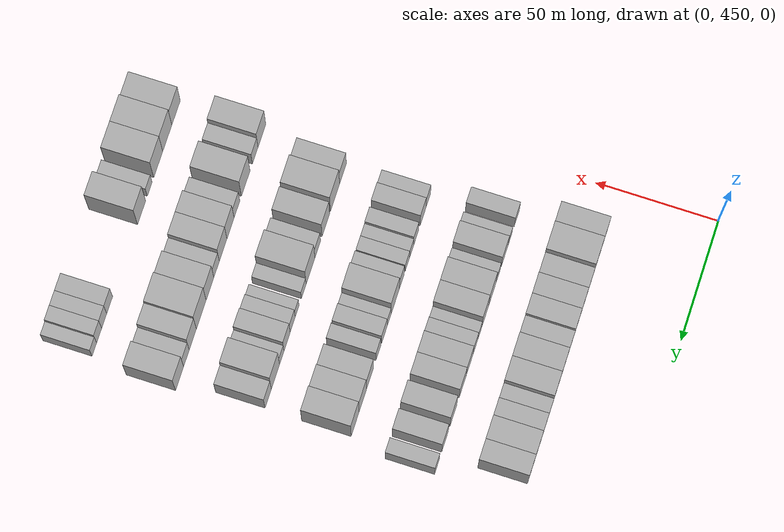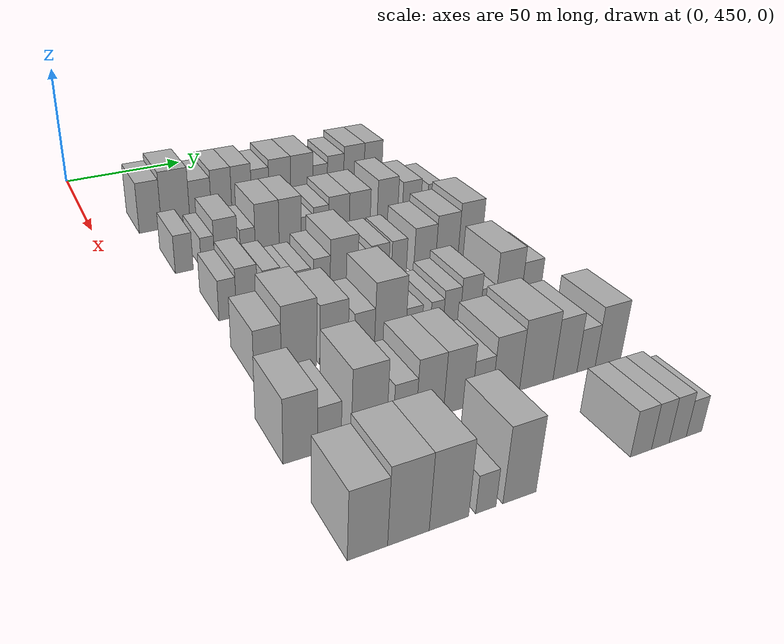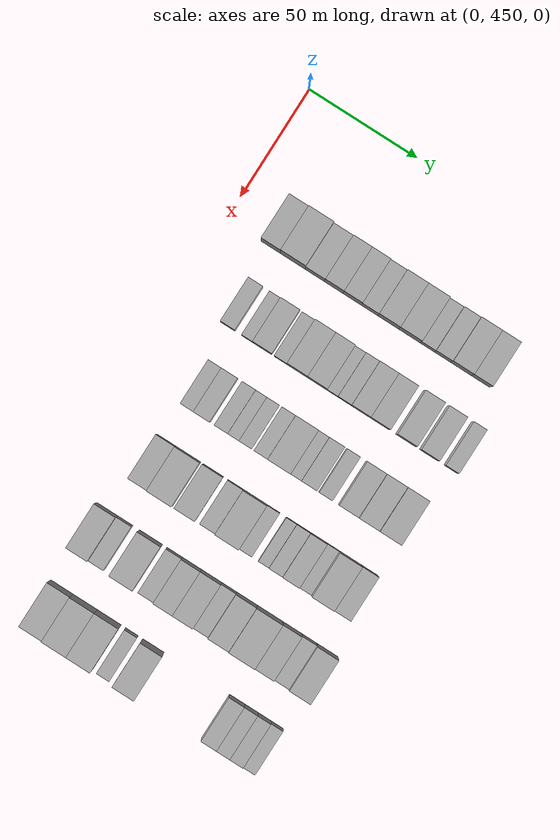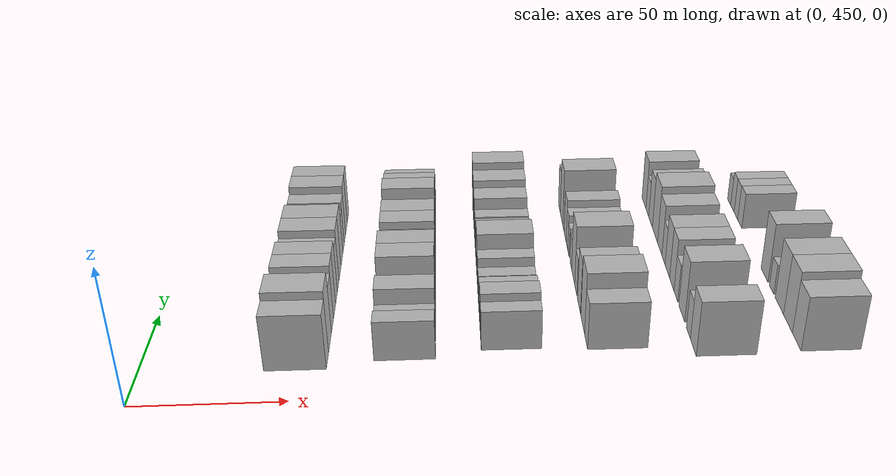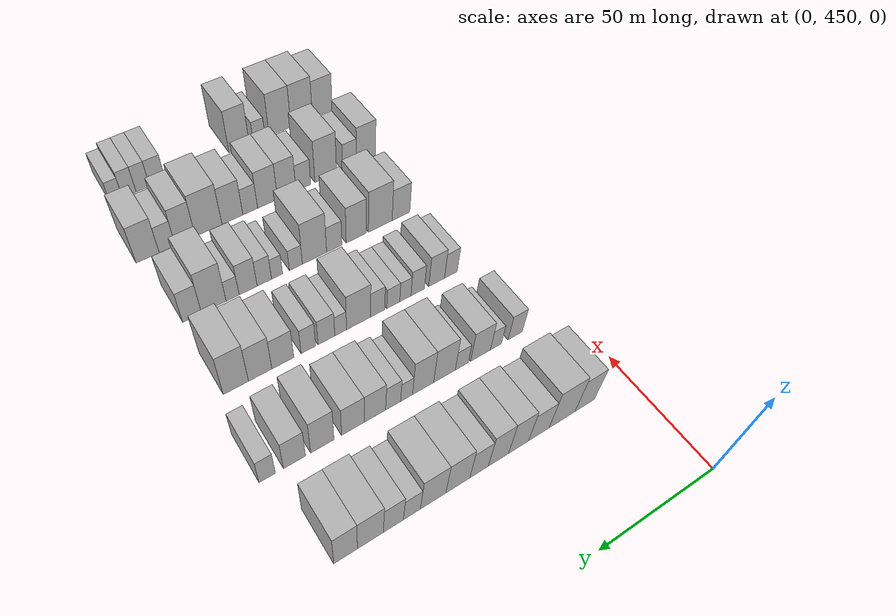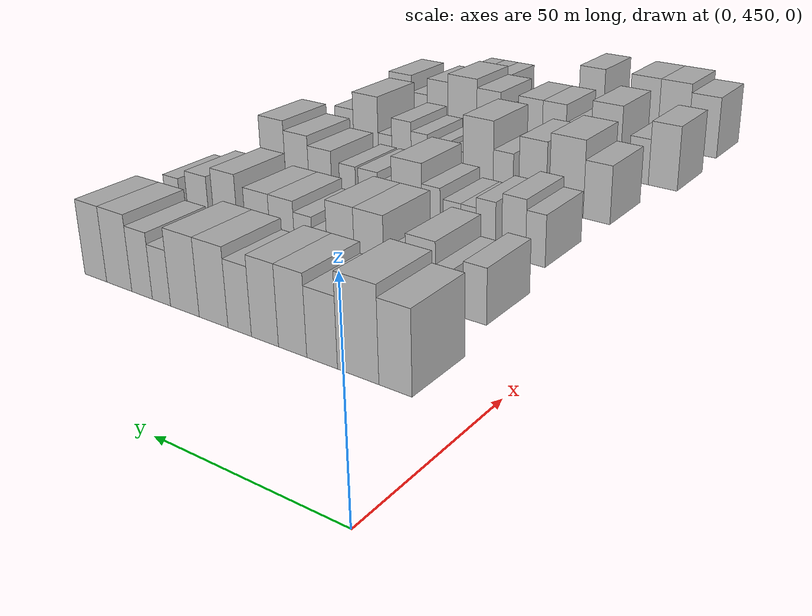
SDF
<sdf version="1.6">
 <world name="default">
  <model name="building_123">
   <static>1</static>
   <pose>50.0000 470.5112 0 0.000000 0.000000 0.000000</pose>
   <link name="link">
    <pose>0 0 10.50 0 0 0</pose>
    <collision name="collision"><geometry><box><size>20.0000 8.8356 21.0000</size></box></geometry></collision>
    <visual name="visual">
     <cast_shadows>0</cast_shadows>
     <geometry><box><size>20.0000 8.8356 21.0000</size></box></geometry>
     <material>
      <script>
       <uri>model://HANNAS_wall/materials/scripts</uri>
       <uri>model://HANNAS_wall/materials/textures</uri>
       <name>vrc/HANNAS_wall</name>
      </script>
     </material>
    </visual>
   </link>
  </model>
  <model name="building_124">
   <static>1</static>
   <pose>50.0000 480.6737 0 0.000000 0.000000 0.000000</pose>
   <link name="link">
    <pose>0 0 12.00 0 0 0</pose>
    <collision name="collision"><geometry><box><size>20.0000 11.4893 24.0000</size></box></geometry></collision>
    <visual name="visual">
     <cast_shadows>0</cast_shadows>
     <geometry><box><size>20.0000 11.4893 24.0000</size></box></geometry>
     <material>
      <script>
       <uri>model://HANNAS_wall/materials/scripts</uri>
       <uri>model://HANNAS_wall/materials/textures</uri>
       <name>vrc/HANNAS_wall</name>
      </script>
     </material>
    </visual>
   </link>
  </model>
  <model name="building_125">
   <static>1</static>
   <pose>50.0000 490.8696 0 0.000000 0.000000 0.000000</pose>
   <link name="link">
    <pose>0 0 9.00 0 0 0</pose>
    <collision name="collision"><geometry><box><size>20.0000 8.9024 18.0000</size></box></geometry></collision>
    <visual name="visual">
     <cast_shadows>0</cast_shadows>
     <geometry><box><size>20.0000 8.9024 18.0000</size></box></geometry>
     <material>
      <script>
       <uri>model://HANNAS_wall/materials/scripts</uri>
       <uri>model://HANNAS_wall/materials/textures</uri>
       <name>vrc/HANNAS_wall</name>
      </script>
     </material>
    </visual>
   </link>
  </model>
  <model name="building_126">
   <static>1</static>
   <pose>50.0000 499.5842 0 0.000000 0.000000 0.000000</pose>
   <link name="link">
    <pose>0 0 10.50 0 0 0</pose>
    <collision name="collision"><geometry><box><size>20.0000 8.5269 21.0000</size></box></geometry></collision>
    <visual name="visual">
     <cast_shadows>0</cast_shadows>
     <geometry><box><size>20.0000 8.5269 21.0000</size></box></geometry>
     <material>
      <script>
       <uri>model://HANNAS_wall/materials/scripts</uri>
       <uri>model://HANNAS_wall/materials/textures</uri>
       <name>vrc/HANNAS_wall</name>
      </script>
     </material>
    </visual>
   </link>
  </model>
  <model name="building_127">
   <static>1</static>
   <pose>50.0000 508.0616 0 0.000000 0.000000 0.000000</pose>
   <link name="link">
    <pose>0 0 10.50 0 0 0</pose>
    <collision name="collision"><geometry><box><size>20.0000 8.4279 21.0000</size></box></geometry></collision>
    <visual name="visual">
     <cast_shadows>0</cast_shadows>
     <geometry><box><size>20.0000 8.4279 21.0000</size></box></geometry>
     <material>
      <script>
       <uri>model://HANNAS_wall/materials/scripts</uri>
       <uri>model://HANNAS_wall/materials/textures</uri>
       <name>vrc/HANNAS_wall</name>
      </script>
     </material>
    </visual>
   </link>
  </model>
  <model name="building_128">
   <static>1</static>
   <pose>50.0000 516.0474 0 0.000000 0.000000 0.000000</pose>
   <link name="link">
    <pose>0 0 9.00 0 0 0</pose>
    <collision name="collision"><geometry><box><size>20.0000 7.5436 18.0000</size></box></geometry></collision>
    <visual name="visual">
     <cast_shadows>0</cast_shadows>
     <geometry><box><size>20.0000 7.5436 18.0000</size></box></geometry>
     <material>
      <script>
       <uri>model://HANNAS_wall/materials/scripts</uri>
       <uri>model://HANNAS_wall/materials/textures</uri>
       <name>vrc/HANNAS_wall</name>
      </script>
     </material>
    </visual>
   </link>
  </model>
  <model name="building_129">
   <static>1</static>
   <pose>50.0000 524.6198 0 0.000000 0.000000 0.000000</pose>
   <link name="link">
    <pose>0 0 10.50 0 0 0</pose>
    <collision name="collision"><geometry><box><size>20.0000 9.6011 21.0000</size></box></geometry></collision>
    <visual name="visual">
     <cast_shadows>0</cast_shadows>
     <geometry><box><size>20.0000 9.6011 21.0000</size></box></geometry>
     <material>
      <script>
       <uri>model://HANNAS_wall/materials/scripts</uri>
       <uri>model://HANNAS_wall/materials/textures</uri>
       <name>vrc/HANNAS_wall</name>
      </script>
     </material>
    </visual>
   </link>
  </model>
  <model name="building_130">
   <static>1</static>
   <pose>50.0000 534.3886 0 0.000000 0.000000 0.000000</pose>
   <link name="link">
    <pose>0 0 10.50 0 0 0</pose>
    <collision name="collision"><geometry><box><size>20.0000 9.9365 21.0000</size></box></geometry></collision>
    <visual name="visual">
     <cast_shadows>0</cast_shadows>
     <geometry><box><size>20.0000 9.9365 21.0000</size></box></geometry>
     <material>
      <script>
       <uri>model://HANNAS_wall/materials/scripts</uri>
       <uri>model://HANNAS_wall/materials/textures</uri>
       <name>vrc/HANNAS_wall</name>
      </script>
     </material>
    </visual>
   </link>
  </model>
  <model name="building_131">
   <static>1</static>
   <pose>50.0000 542.6065 0 0.000000 0.000000 0.000000</pose>
   <link name="link">
    <pose>0 0 7.50 0 0 0</pose>
    <collision name="collision"><geometry><box><size>20.0000 6.4995 15.0000</size></box></geometry></collision>
    <visual name="visual">
     <cast_shadows>0</cast_shadows>
     <geometry><box><size>20.0000 6.4995 15.0000</size></box></geometry>
     <material>
      <script>
       <uri>model://HANNAS_wall/materials/scripts</uri>
       <uri>model://HANNAS_wall/materials/textures</uri>
       <name>vrc/HANNAS_wall</name>
      </script>
     </material>
    </visual>
   </link>
  </model>
  <model name="building_132">
   <static>1</static>
   <pose>50.0000 549.6323 0 0.000000 0.000000 0.000000</pose>
   <link name="link">
    <pose>0 0 9.00 0 0 0</pose>
    <collision name="collision"><geometry><box><size>20.0000 7.5519 18.0000</size></box></geometry></collision>
    <visual name="visual">
     <cast_shadows>0</cast_shadows>
     <geometry><box><size>20.0000 7.5519 18.0000</size></box></geometry>
     <material>
      <script>
       <uri>model://HANNAS_wall/materials/scripts</uri>
       <uri>model://HANNAS_wall/materials/textures</uri>
       <name>vrc/HANNAS_wall</name>
      </script>
     </material>
    </visual>
   </link>
  </model>
  <model name="building_133">
   <static>1</static>
   <pose>50.0000 558.1742 0 0.000000 0.000000 0.000000</pose>
   <link name="link">
    <pose>0 0 10.50 0 0 0</pose>
    <collision name="collision"><geometry><box><size>20.0000 9.5319 21.0000</size></box></geometry></collision>
    <visual name="visual">
     <cast_shadows>0</cast_shadows>
     <geometry><box><size>20.0000 9.5319 21.0000</size></box></geometry>
     <material>
      <script>
       <uri>model://HANNAS_wall/materials/scripts</uri>
       <uri>model://HANNAS_wall/materials/textures</uri>
       <name>vrc/HANNAS_wall</name>
      </script>
     </material>
    </visual>
   </link>
  </model>
  <model name="building_134">
   <static>1</static>
   <pose>50.0000 567.1989 0 0.000000 0.000000 0.000000</pose>
   <link name="link">
    <pose>0 0 10.50 0 0 0</pose>
    <collision name="collision"><geometry><box><size>20.0000 8.5174 21.0000</size></box></geometry></collision>
    <visual name="visual">
     <cast_shadows>0</cast_shadows>
     <geometry><box><size>20.0000 8.5174 21.0000</size></box></geometry>
     <material>
      <script>
       <uri>model://HANNAS_wall/materials/scripts</uri>
       <uri>model://HANNAS_wall/materials/textures</uri>
       <name>vrc/HANNAS_wall</name>
      </script>
     </material>
    </visual>
   </link>
  </model>
  <model name="building_253">
   <static>1</static>
   <pose>85.0000 473.2179 0 0.000000 0.000000 0.000000</pose>
   <link name="link">
    <pose>0 0 7.50 0 0 0</pose>
    <collision name="collision"><geometry><box><size>20.0000 6.6414 15.0000</size></box></geometry></collision>
    <visual name="visual">
     <cast_shadows>0</cast_shadows>
     <geometry><box><size>20.0000 6.6414 15.0000</size></box></geometry>
     <material>
      <script>
       <uri>model://HANNAS_wall/materials/scripts</uri>
       <uri>model://HANNAS_wall/materials/textures</uri>
       <name>vrc/HANNAS_wall</name>
      </script>
     </material>
    </visual>
   </link>
  </model>
  <model name="building_254">
   <static>1</static>
   <pose>85.0000 482.0703 0 0.000000 0.000000 0.000000</pose>
   <link name="link">
    <pose>0 0 6.00 0 0 0</pose>
    <collision name="collision"><geometry><box><size>20.0000 5.0635 12.0000</size></box></geometry></collision>
    <visual name="visual">
     <cast_shadows>0</cast_shadows>
     <geometry><box><size>20.0000 5.0635 12.0000</size></box></geometry>
     <material>
      <script>
       <uri>model://HANNAS_wall/materials/scripts</uri>
       <uri>model://HANNAS_wall/materials/textures</uri>
       <name>vrc/HANNAS_wall</name>
      </script>
     </material>
    </visual>
   </link>
  </model>
  <model name="building_255">
   <static>1</static>
   <pose>85.0000 489.0449 0 0.000000 0.000000 0.000000</pose>
   <link name="link">
    <pose>0 0 9.00 0 0 0</pose>
    <collision name="collision"><geometry><box><size>20.0000 8.8857 18.0000</size></box></geometry></collision>
    <visual name="visual">
     <cast_shadows>0</cast_shadows>
     <geometry><box><size>20.0000 8.8857 18.0000</size></box></geometry>
     <material>
      <script>
       <uri>model://HANNAS_wall/materials/scripts</uri>
       <uri>model://HANNAS_wall/materials/textures</uri>
       <name>vrc/HANNAS_wall</name>
      </script>
     </material>
    </visual>
   </link>
  </model>
  <model name="building_256">
   <static>1</static>
   <pose>85.0000 497.3814 0 0.000000 0.000000 0.000000</pose>
   <link name="link">
    <pose>0 0 6.00 0 0 0</pose>
    <collision name="collision"><geometry><box><size>20.0000 5.7872 12.0000</size></box></geometry></collision>
    <visual name="visual">
     <cast_shadows>0</cast_shadows>
     <geometry><box><size>20.0000 5.7872 12.0000</size></box></geometry>
     <material>
      <script>
       <uri>model://HANNAS_wall/materials/scripts</uri>
       <uri>model://HANNAS_wall/materials/textures</uri>
       <name>vrc/HANNAS_wall</name>
      </script>
     </material>
    </visual>
   </link>
  </model>
  <model name="building_257">
   <static>1</static>
   <pose>85.0000 504.9848 0 0.000000 0.000000 0.000000</pose>
   <link name="link">
    <pose>0 0 10.50 0 0 0</pose>
    <collision name="collision"><geometry><box><size>20.0000 9.4197 21.0000</size></box></geometry></collision>
    <visual name="visual">
     <cast_shadows>0</cast_shadows>
     <geometry><box><size>20.0000 9.4197 21.0000</size></box></geometry>
     <material>
      <script>
       <uri>model://HANNAS_wall/materials/scripts</uri>
       <uri>model://HANNAS_wall/materials/textures</uri>
       <name>vrc/HANNAS_wall</name>
      </script>
     </material>
    </visual>
   </link>
  </model>
  <model name="building_258">
   <static>1</static>
   <pose>85.0000 514.1948 0 0.000000 0.000000 0.000000</pose>
   <link name="link">
    <pose>0 0 10.50 0 0 0</pose>
    <collision name="collision"><geometry><box><size>20.0000 9.0003 21.0000</size></box></geometry></collision>
    <visual name="visual">
     <cast_shadows>0</cast_shadows>
     <geometry><box><size>20.0000 9.0003 21.0000</size></box></geometry>
     <material>
      <script>
       <uri>model://HANNAS_wall/materials/scripts</uri>
       <uri>model://HANNAS_wall/materials/textures</uri>
       <name>vrc/HANNAS_wall</name>
      </script>
     </material>
    </visual>
   </link>
  </model>
  <model name="building_259">
   <static>1</static>
   <pose>85.0000 521.1897 0 0.000000 0.000000 0.000000</pose>
   <link name="link">
    <pose>0 0 6.00 0 0 0</pose>
    <collision name="collision"><geometry><box><size>20.0000 4.9897 12.0000</size></box></geometry></collision>
    <visual name="visual">
     <cast_shadows>0</cast_shadows>
     <geometry><box><size>20.0000 4.9897 12.0000</size></box></geometry>
     <material>
      <script>
       <uri>model://HANNAS_wall/materials/scripts</uri>
       <uri>model://HANNAS_wall/materials/textures</uri>
       <name>vrc/HANNAS_wall</name>
      </script>
     </material>
    </visual>
   </link>
  </model>
  <model name="building_260">
   <static>1</static>
   <pose>85.0000 526.7797 0 0.000000 0.000000 0.000000</pose>
   <link name="link">
    <pose>0 0 7.50 0 0 0</pose>
    <collision name="collision"><geometry><box><size>20.0000 6.1902 15.0000</size></box></geometry></collision>
    <visual name="visual">
     <cast_shadows>0</cast_shadows>
     <geometry><box><size>20.0000 6.1902 15.0000</size></box></geometry>
     <material>
      <script>
       <uri>model://HANNAS_wall/materials/scripts</uri>
       <uri>model://HANNAS_wall/materials/textures</uri>
       <name>vrc/HANNAS_wall</name>
      </script>
     </material>
    </visual>
   </link>
  </model>
  <model name="building_261">
   <static>1</static>
   <pose>85.0000 534.2277 0 0.000000 0.000000 0.000000</pose>
   <link name="link">
    <pose>0 0 9.00 0 0 0</pose>
    <collision name="collision"><geometry><box><size>20.0000 8.7057 18.0000</size></box></geometry></collision>
    <visual name="visual">
     <cast_shadows>0</cast_shadows>
     <geometry><box><size>20.0000 8.7057 18.0000</size></box></geometry>
     <material>
      <script>
       <uri>model://HANNAS_wall/materials/scripts</uri>
       <uri>model://HANNAS_wall/materials/textures</uri>
       <name>vrc/HANNAS_wall</name>
      </script>
     </material>
    </visual>
   </link>
  </model>
  <model name="building_262">
   <static>1</static>
   <pose>85.0000 543.0652 0 0.000000 0.000000 0.000000</pose>
   <link name="link">
    <pose>0 0 9.00 0 0 0</pose>
    <collision name="collision"><geometry><box><size>20.0000 8.9694 18.0000</size></box></geometry></collision>
    <visual name="visual">
     <cast_shadows>0</cast_shadows>
     <geometry><box><size>20.0000 8.9694 18.0000</size></box></geometry>
     <material>
      <script>
       <uri>model://HANNAS_wall/materials/scripts</uri>
       <uri>model://HANNAS_wall/materials/textures</uri>
       <name>vrc/HANNAS_wall</name>
      </script>
     </material>
    </visual>
   </link>
  </model>
  <model name="building_263">
   <static>1</static>
   <pose>85.0000 555.0490 0 0.000000 0.000000 0.000000</pose>
   <link name="link">
    <pose>0 0 10.50 0 0 0</pose>
    <collision name="collision"><geometry><box><size>20.0000 8.9983 21.0000</size></box></geometry></collision>
    <visual name="visual">
     <cast_shadows>0</cast_shadows>
     <geometry><box><size>20.0000 8.9983 21.0000</size></box></geometry>
     <material>
      <script>
       <uri>model://HANNAS_wall/materials/scripts</uri>
       <uri>model://HANNAS_wall/materials/textures</uri>
       <name>vrc/HANNAS_wall</name>
      </script>
     </material>
    </visual>
   </link>
  </model>
  <model name="building_264">
   <static>1</static>
   <pose>85.0000 565.6936 0 0.000000 0.000000 0.000000</pose>
   <link name="link">
    <pose>0 0 9.00 0 0 0</pose>
    <collision name="collision"><geometry><box><size>20.0000 8.2908 18.0000</size></box></geometry></collision>
    <visual name="visual">
     <cast_shadows>0</cast_shadows>
     <geometry><box><size>20.0000 8.2908 18.0000</size></box></geometry>
     <material>
      <script>
       <uri>model://HANNAS_wall/materials/scripts</uri>
       <uri>model://HANNAS_wall/materials/textures</uri>
       <name>vrc/HANNAS_wall</name>
      </script>
     </material>
    </visual>
   </link>
  </model>
  <model name="building_265">
   <static>1</static>
   <pose>85.0000 575.8646 0 0.000000 0.000000 0.000000</pose>
   <link name="link">
    <pose>0 0 7.50 0 0 0</pose>
    <collision name="collision"><geometry><box><size>20.0000 6.0513 15.0000</size></box></geometry></collision>
    <visual name="visual">
     <cast_shadows>0</cast_shadows>
     <geometry><box><size>20.0000 6.0513 15.0000</size></box></geometry>
     <material>
      <script>
       <uri>model://HANNAS_wall/materials/scripts</uri>
       <uri>model://HANNAS_wall/materials/textures</uri>
       <name>vrc/HANNAS_wall</name>
      </script>
     </material>
    </visual>
   </link>
  </model>
  <model name="building_384">
   <static>1</static>
   <pose>120.0000 477.0370 0 0.000000 0.000000 0.000000</pose>
   <link name="link">
    <pose>0 0 7.50 0 0 0</pose>
    <collision name="collision"><geometry><box><size>20.0000 6.0301 15.0000</size></box></geometry></collision>
    <visual name="visual">
     <cast_shadows>0</cast_shadows>
     <geometry><box><size>20.0000 6.0301 15.0000</size></box></geometry>
     <material>
      <script>
       <uri>model://HANNAS_wall/materials/scripts</uri>
       <uri>model://HANNAS_wall/materials/textures</uri>
       <name>vrc/HANNAS_wall</name>
      </script>
     </material>
    </visual>
   </link>
  </model>
  <model name="building_385">
   <static>1</static>
   <pose>120.0000 483.7780 0 0.000000 0.000000 0.000000</pose>
   <link name="link">
    <pose>0 0 9.00 0 0 0</pose>
    <collision name="collision"><geometry><box><size>20.0000 7.4520 18.0000</size></box></geometry></collision>
    <visual name="visual">
     <cast_shadows>0</cast_shadows>
     <geometry><box><size>20.0000 7.4520 18.0000</size></box></geometry>
     <material>
      <script>
       <uri>model://HANNAS_wall/materials/scripts</uri>
       <uri>model://HANNAS_wall/materials/textures</uri>
       <name>vrc/HANNAS_wall</name>
      </script>
     </material>
    </visual>
   </link>
  </model>
  <model name="building_386">
   <static>1</static>
   <pose>120.0000 492.5962 0 0.000000 0.000000 0.000000</pose>
   <link name="link">
    <pose>0 0 7.50 0 0 0</pose>
    <collision name="collision"><geometry><box><size>20.0000 6.1843 15.0000</size></box></geometry></collision>
    <visual name="visual">
     <cast_shadows>0</cast_shadows>
     <geometry><box><size>20.0000 6.1843 15.0000</size></box></geometry>
     <material>
      <script>
       <uri>model://HANNAS_wall/materials/scripts</uri>
       <uri>model://HANNAS_wall/materials/textures</uri>
       <name>vrc/HANNAS_wall</name>
      </script>
     </material>
    </visual>
   </link>
  </model>
  <model name="building_387">
   <static>1</static>
   <pose>120.0000 498.2503 0 0.000000 0.000000 0.000000</pose>
   <link name="link">
    <pose>0 0 6.00 0 0 0</pose>
    <collision name="collision"><geometry><box><size>20.0000 5.1239 12.0000</size></box></geometry></collision>
    <visual name="visual">
     <cast_shadows>0</cast_shadows>
     <geometry><box><size>20.0000 5.1239 12.0000</size></box></geometry>
     <material>
      <script>
       <uri>model://HANNAS_wall/materials/scripts</uri>
       <uri>model://HANNAS_wall/materials/textures</uri>
       <name>vrc/HANNAS_wall</name>
      </script>
     </material>
    </visual>
   </link>
  </model>
  <model name="building_388">
   <static>1</static>
   <pose>120.0000 503.7282 0 0.000000 0.000000 0.000000</pose>
   <link name="link">
    <pose>0 0 6.00 0 0 0</pose>
    <collision name="collision"><geometry><box><size>20.0000 5.8319 12.0000</size></box></geometry></collision>
    <visual name="visual">
     <cast_shadows>0</cast_shadows>
     <geometry><box><size>20.0000 5.8319 12.0000</size></box></geometry>
     <material>
      <script>
       <uri>model://HANNAS_wall/materials/scripts</uri>
       <uri>model://HANNAS_wall/materials/textures</uri>
       <name>vrc/HANNAS_wall</name>
      </script>
     </material>
    </visual>
   </link>
  </model>
  <model name="building_389">
   <static>1</static>
   <pose>120.0000 510.7661 0 0.000000 0.000000 0.000000</pose>
   <link name="link">
    <pose>0 0 7.50 0 0 0</pose>
    <collision name="collision"><geometry><box><size>20.0000 6.2438 15.0000</size></box></geometry></collision>
    <visual name="visual">
     <cast_shadows>0</cast_shadows>
     <geometry><box><size>20.0000 6.2438 15.0000</size></box></geometry>
     <material>
      <script>
       <uri>model://HANNAS_wall/materials/scripts</uri>
       <uri>model://HANNAS_wall/materials/textures</uri>
       <name>vrc/HANNAS_wall</name>
      </script>
     </material>
    </visual>
   </link>
  </model>
  <model name="building_390">
   <static>1</static>
   <pose>120.0000 519.1310 0 0.000000 0.000000 0.000000</pose>
   <link name="link">
    <pose>0 0 10.50 0 0 0</pose>
    <collision name="collision"><geometry><box><size>20.0000 10.4860 21.0000</size></box></geometry></collision>
    <visual name="visual">
     <cast_shadows>0</cast_shadows>
     <geometry><box><size>20.0000 10.4860 21.0000</size></box></geometry>
     <material>
      <script>
       <uri>model://HANNAS_wall/materials/scripts</uri>
       <uri>model://HANNAS_wall/materials/textures</uri>
       <name>vrc/HANNAS_wall</name>
      </script>
     </material>
    </visual>
   </link>
  </model>
  <model name="building_391">
   <static>1</static>
   <pose>120.0000 526.8894 0 0.000000 0.000000 0.000000</pose>
   <link name="link">
    <pose>0 0 6.00 0 0 0</pose>
    <collision name="collision"><geometry><box><size>20.0000 5.0310 12.0000</size></box></geometry></collision>
    <visual name="visual">
     <cast_shadows>0</cast_shadows>
     <geometry><box><size>20.0000 5.0310 12.0000</size></box></geometry>
     <material>
      <script>
       <uri>model://HANNAS_wall/materials/scripts</uri>
       <uri>model://HANNAS_wall/materials/textures</uri>
       <name>vrc/HANNAS_wall</name>
      </script>
     </material>
    </visual>
   </link>
  </model>
  <model name="building_392">
   <static>1</static>
   <pose>120.0000 532.9439 0 0.000000 0.000000 0.000000</pose>
   <link name="link">
    <pose>0 0 7.50 0 0 0</pose>
    <collision name="collision"><geometry><box><size>20.0000 7.0779 15.0000</size></box></geometry></collision>
    <visual name="visual">
     <cast_shadows>0</cast_shadows>
     <geometry><box><size>20.0000 7.0779 15.0000</size></box></geometry>
     <material>
      <script>
       <uri>model://HANNAS_wall/materials/scripts</uri>
       <uri>model://HANNAS_wall/materials/textures</uri>
       <name>vrc/HANNAS_wall</name>
      </script>
     </material>
    </visual>
   </link>
  </model>
  <model name="building_393">
   <static>1</static>
   <pose>120.0000 540.5121 0 0.000000 0.000000 0.000000</pose>
   <link name="link">
    <pose>0 0 7.50 0 0 0</pose>
    <collision name="collision"><geometry><box><size>20.0000 6.0585 15.0000</size></box></geometry></collision>
    <visual name="visual">
     <cast_shadows>0</cast_shadows>
     <geometry><box><size>20.0000 6.0585 15.0000</size></box></geometry>
     <material>
      <script>
       <uri>model://HANNAS_wall/materials/scripts</uri>
       <uri>model://HANNAS_wall/materials/textures</uri>
       <name>vrc/HANNAS_wall</name>
      </script>
     </material>
    </visual>
   </link>
  </model>
  <model name="building_394">
   <static>1</static>
   <pose>120.0000 551.0056 0 0.000000 0.000000 0.000000</pose>
   <link name="link">
    <pose>0 0 9.00 0 0 0</pose>
    <collision name="collision"><geometry><box><size>20.0000 8.9286 18.0000</size></box></geometry></collision>
    <visual name="visual">
     <cast_shadows>0</cast_shadows>
     <geometry><box><size>20.0000 8.9286 18.0000</size></box></geometry>
     <material>
      <script>
       <uri>model://HANNAS_wall/materials/scripts</uri>
       <uri>model://HANNAS_wall/materials/textures</uri>
       <name>vrc/HANNAS_wall</name>
      </script>
     </material>
    </visual>
   </link>
  </model>
  <model name="building_395">
   <static>1</static>
   <pose>120.0000 560.1381 0 0.000000 0.000000 0.000000</pose>
   <link name="link">
    <pose>0 0 10.50 0 0 0</pose>
    <collision name="collision"><geometry><box><size>20.0000 9.3363 21.0000</size></box></geometry></collision>
    <visual name="visual">
     <cast_shadows>0</cast_shadows>
     <geometry><box><size>20.0000 9.3363 21.0000</size></box></geometry>
     <material>
      <script>
       <uri>model://HANNAS_wall/materials/scripts</uri>
       <uri>model://HANNAS_wall/materials/textures</uri>
       <name>vrc/HANNAS_wall</name>
      </script>
     </material>
    </visual>
   </link>
  </model>
  <model name="building_396">
   <static>1</static>
   <pose>120.0000 569.7471 0 0.000000 0.000000 0.000000</pose>
   <link name="link">
    <pose>0 0 12.00 0 0 0</pose>
    <collision name="collision"><geometry><box><size>20.0000 9.8818 24.0000</size></box></geometry></collision>
    <visual name="visual">
     <cast_shadows>0</cast_shadows>
     <geometry><box><size>20.0000 9.8818 24.0000</size></box></geometry>
     <material>
      <script>
       <uri>model://HANNAS_wall/materials/scripts</uri>
       <uri>model://HANNAS_wall/materials/textures</uri>
       <name>vrc/HANNAS_wall</name>
      </script>
     </material>
    </visual>
   </link>
  </model>
  <model name="building_515">
   <static>1</static>
   <pose>155.0000 476.9921 0 0.000000 0.000000 0.000000</pose>
   <link name="link">
    <pose>0 0 9.00 0 0 0</pose>
    <collision name="collision"><geometry><box><size>20.0000 8.6924 18.0000</size></box></geometry></collision>
    <visual name="visual">
     <cast_shadows>0</cast_shadows>
     <geometry><box><size>20.0000 8.6924 18.0000</size></box></geometry>
     <material>
      <script>
       <uri>model://HANNAS_wall/materials/scripts</uri>
       <uri>model://HANNAS_wall/materials/textures</uri>
       <name>vrc/HANNAS_wall</name>
      </script>
     </material>
    </visual>
   </link>
  </model>
  <model name="building_516">
   <static>1</static>
   <pose>155.0000 487.0674 0 0.000000 0.000000 0.000000</pose>
   <link name="link">
    <pose>0 0 12.00 0 0 0</pose>
    <collision name="collision"><geometry><box><size>20.0000 11.4581 24.0000</size></box></geometry></collision>
    <visual name="visual">
     <cast_shadows>0</cast_shadows>
     <geometry><box><size>20.0000 11.4581 24.0000</size></box></geometry>
     <material>
      <script>
       <uri>model://HANNAS_wall/materials/scripts</uri>
       <uri>model://HANNAS_wall/materials/textures</uri>
       <name>vrc/HANNAS_wall</name>
      </script>
     </material>
    </visual>
   </link>
  </model>
  <model name="building_517">
   <static>1</static>
   <pose>155.0000 498.5283 0 0.000000 0.000000 0.000000</pose>
   <link name="link">
    <pose>0 0 10.50 0 0 0</pose>
    <collision name="collision"><geometry><box><size>20.0000 9.4638 21.0000</size></box></geometry></collision>
    <visual name="visual">
     <cast_shadows>0</cast_shadows>
     <geometry><box><size>20.0000 9.4638 21.0000</size></box></geometry>
     <material>
      <script>
       <uri>model://HANNAS_wall/materials/scripts</uri>
       <uri>model://HANNAS_wall/materials/textures</uri>
       <name>vrc/HANNAS_wall</name>
      </script>
     </material>
    </visual>
   </link>
  </model>
  <model name="building_518">
   <static>1</static>
   <pose>155.0000 508.8019 0 0.000000 0.000000 0.000000</pose>
   <link name="link">
    <pose>0 0 7.50 0 0 0</pose>
    <collision name="collision"><geometry><box><size>20.0000 7.0834 15.0000</size></box></geometry></collision>
    <visual name="visual">
     <cast_shadows>0</cast_shadows>
     <geometry><box><size>20.0000 7.0834 15.0000</size></box></geometry>
     <material>
      <script>
       <uri>model://HANNAS_wall/materials/scripts</uri>
       <uri>model://HANNAS_wall/materials/textures</uri>
       <name>vrc/HANNAS_wall</name>
      </script>
     </material>
    </visual>
   </link>
  </model>
  <model name="building_519">
   <static>1</static>
   <pose>155.0000 517.8220 0 0.000000 0.000000 0.000000</pose>
   <link name="link">
    <pose>0 0 12.00 0 0 0</pose>
    <collision name="collision"><geometry><box><size>20.0000 10.9569 24.0000</size></box></geometry></collision>
    <visual name="visual">
     <cast_shadows>0</cast_shadows>
     <geometry><box><size>20.0000 10.9569 24.0000</size></box></geometry>
     <material>
      <script>
       <uri>model://HANNAS_wall/materials/scripts</uri>
       <uri>model://HANNAS_wall/materials/textures</uri>
       <name>vrc/HANNAS_wall</name>
      </script>
     </material>
    </visual>
   </link>
  </model>
  <model name="building_520">
   <static>1</static>
   <pose>155.0000 526.2135 0 0.000000 0.000000 0.000000</pose>
   <link name="link">
    <pose>0 0 6.00 0 0 0</pose>
    <collision name="collision"><geometry><box><size>20.0000 5.8260 12.0000</size></box></geometry></collision>
    <visual name="visual">
     <cast_shadows>0</cast_shadows>
     <geometry><box><size>20.0000 5.8260 12.0000</size></box></geometry>
     <material>
      <script>
       <uri>model://HANNAS_wall/materials/scripts</uri>
       <uri>model://HANNAS_wall/materials/textures</uri>
       <name>vrc/HANNAS_wall</name>
      </script>
     </material>
    </visual>
   </link>
  </model>
  <model name="building_521">
   <static>1</static>
   <pose>155.0000 534.5324 0 0.000000 0.000000 0.000000</pose>
   <link name="link">
    <pose>0 0 6.00 0 0 0</pose>
    <collision name="collision"><geometry><box><size>20.0000 4.8117 12.0000</size></box></geometry></collision>
    <visual name="visual">
     <cast_shadows>0</cast_shadows>
     <geometry><box><size>20.0000 4.8117 12.0000</size></box></geometry>
     <material>
      <script>
       <uri>model://HANNAS_wall/materials/scripts</uri>
       <uri>model://HANNAS_wall/materials/textures</uri>
       <name>vrc/HANNAS_wall</name>
      </script>
     </material>
    </visual>
   </link>
  </model>
  <model name="building_522">
   <static>1</static>
   <pose>155.0000 540.0642 0 0.000000 0.000000 0.000000</pose>
   <link name="link">
    <pose>0 0 7.50 0 0 0</pose>
    <collision name="collision"><geometry><box><size>20.0000 6.2519 15.0000</size></box></geometry></collision>
    <visual name="visual">
     <cast_shadows>0</cast_shadows>
     <geometry><box><size>20.0000 6.2519 15.0000</size></box></geometry>
     <material>
      <script>
       <uri>model://HANNAS_wall/materials/scripts</uri>
       <uri>model://HANNAS_wall/materials/textures</uri>
       <name>vrc/HANNAS_wall</name>
      </script>
     </material>
    </visual>
   </link>
  </model>
  <model name="building_523">
   <static>1</static>
   <pose>155.0000 547.0436 0 0.000000 0.000000 0.000000</pose>
   <link name="link">
    <pose>0 0 9.00 0 0 0</pose>
    <collision name="collision"><geometry><box><size>20.0000 7.7068 18.0000</size></box></geometry></collision>
    <visual name="visual">
     <cast_shadows>0</cast_shadows>
     <geometry><box><size>20.0000 7.7068 18.0000</size></box></geometry>
     <material>
      <script>
       <uri>model://HANNAS_wall/materials/scripts</uri>
       <uri>model://HANNAS_wall/materials/textures</uri>
       <name>vrc/HANNAS_wall</name>
      </script>
     </material>
    </visual>
   </link>
  </model>
  <model name="building_524">
   <static>1</static>
   <pose>155.0000 553.6451 0 0.000000 0.000000 0.000000</pose>
   <link name="link">
    <pose>0 0 6.00 0 0 0</pose>
    <collision name="collision"><geometry><box><size>20.0000 5.4963 12.0000</size></box></geometry></collision>
    <visual name="visual">
     <cast_shadows>0</cast_shadows>
     <geometry><box><size>20.0000 5.4963 12.0000</size></box></geometry>
     <material>
      <script>
       <uri>model://HANNAS_wall/materials/scripts</uri>
       <uri>model://HANNAS_wall/materials/textures</uri>
       <name>vrc/HANNAS_wall</name>
      </script>
     </material>
    </visual>
   </link>
  </model>
  <model name="building_525">
   <static>1</static>
   <pose>155.0000 561.4965 0 0.000000 0.000000 0.000000</pose>
   <link name="link">
    <pose>0 0 12.00 0 0 0</pose>
    <collision name="collision"><geometry><box><size>20.0000 10.2064 24.0000</size></box></geometry></collision>
    <visual name="visual">
     <cast_shadows>0</cast_shadows>
     <geometry><box><size>20.0000 10.2064 24.0000</size></box></geometry>
     <material>
      <script>
       <uri>model://HANNAS_wall/materials/scripts</uri>
       <uri>model://HANNAS_wall/materials/textures</uri>
       <name>vrc/HANNAS_wall</name>
      </script>
     </material>
    </visual>
   </link>
  </model>
  <model name="building_526">
   <static>1</static>
   <pose>155.0000 570.4515 0 0.000000 0.000000 0.000000</pose>
   <link name="link">
    <pose>0 0 9.00 0 0 0</pose>
    <collision name="collision"><geometry><box><size>20.0000 7.7036 18.0000</size></box></geometry></collision>
    <visual name="visual">
     <cast_shadows>0</cast_shadows>
     <geometry><box><size>20.0000 7.7036 18.0000</size></box></geometry>
     <material>
      <script>
       <uri>model://HANNAS_wall/materials/scripts</uri>
       <uri>model://HANNAS_wall/materials/textures</uri>
       <name>vrc/HANNAS_wall</name>
      </script>
     </material>
    </visual>
   </link>
  </model>
  <model name="building_641">
   <static>1</static>
   <pose>190.0000 472.0220 0 0.000000 0.000000 0.000000</pose>
   <link name="link">
    <pose>0 0 10.50 0 0 0</pose>
    <collision name="collision"><geometry><box><size>20.0000 9.7504 21.0000</size></box></geometry></collision>
    <visual name="visual">
     <cast_shadows>0</cast_shadows>
     <geometry><box><size>20.0000 9.7504 21.0000</size></box></geometry>
     <material>
      <script>
       <uri>model://HANNAS_wall/materials/scripts</uri>
       <uri>model://HANNAS_wall/materials/textures</uri>
       <name>vrc/HANNAS_wall</name>
      </script>
     </material>
    </visual>
   </link>
  </model>
  <model name="building_642">
   <static>1</static>
   <pose>190.0000 480.3666 0 0.000000 0.000000 0.000000</pose>
   <link name="link">
    <pose>0 0 7.50 0 0 0</pose>
    <collision name="collision"><geometry><box><size>20.0000 6.9388 15.0000</size></box></geometry></collision>
    <visual name="visual">
     <cast_shadows>0</cast_shadows>
     <geometry><box><size>20.0000 6.9388 15.0000</size></box></geometry>
     <material>
      <script>
       <uri>model://HANNAS_wall/materials/scripts</uri>
       <uri>model://HANNAS_wall/materials/textures</uri>
       <name>vrc/HANNAS_wall</name>
      </script>
     </material>
    </visual>
   </link>
  </model>
  <model name="building_643">
   <static>1</static>
   <pose>190.0000 492.1854 0 0.000000 0.000000 0.000000</pose>
   <link name="link">
    <pose>0 0 12.00 0 0 0</pose>
    <collision name="collision"><geometry><box><size>20.0000 10.6988 24.0000</size></box></geometry></collision>
    <visual name="visual">
     <cast_shadows>0</cast_shadows>
     <geometry><box><size>20.0000 10.6988 24.0000</size></box></geometry>
     <material>
      <script>
       <uri>model://HANNAS_wall/materials/scripts</uri>
       <uri>model://HANNAS_wall/materials/textures</uri>
       <name>vrc/HANNAS_wall</name>
      </script>
     </material>
    </visual>
   </link>
  </model>
  <model name="building_644">
   <static>1</static>
   <pose>190.0000 503.1016 0 0.000000 0.000000 0.000000</pose>
   <link name="link">
    <pose>0 0 7.50 0 0 0</pose>
    <collision name="collision"><geometry><box><size>20.0000 7.1336 15.0000</size></box></geometry></collision>
    <visual name="visual">
     <cast_shadows>0</cast_shadows>
     <geometry><box><size>20.0000 7.1336 15.0000</size></box></geometry>
     <material>
      <script>
       <uri>model://HANNAS_wall/materials/scripts</uri>
       <uri>model://HANNAS_wall/materials/textures</uri>
       <name>vrc/HANNAS_wall</name>
      </script>
     </material>
    </visual>
   </link>
  </model>
  <model name="building_645">
   <static>1</static>
   <pose>190.0000 511.0633 0 0.000000 0.000000 0.000000</pose>
   <link name="link">
    <pose>0 0 10.50 0 0 0</pose>
    <collision name="collision"><geometry><box><size>20.0000 8.7898 21.0000</size></box></geometry></collision>
    <visual name="visual">
     <cast_shadows>0</cast_shadows>
     <geometry><box><size>20.0000 8.7898 21.0000</size></box></geometry>
     <material>
      <script>
       <uri>model://HANNAS_wall/materials/scripts</uri>
       <uri>model://HANNAS_wall/materials/textures</uri>
       <name>vrc/HANNAS_wall</name>
      </script>
     </material>
    </visual>
   </link>
  </model>
  <model name="building_646">
   <static>1</static>
   <pose>190.0000 520.1293 0 0.000000 0.000000 0.000000</pose>
   <link name="link">
    <pose>0 0 10.50 0 0 0</pose>
    <collision name="collision"><geometry><box><size>20.0000 9.3423 21.0000</size></box></geometry></collision>
    <visual name="visual">
     <cast_shadows>0</cast_shadows>
     <geometry><box><size>20.0000 9.3423 21.0000</size></box></geometry>
     <material>
      <script>
       <uri>model://HANNAS_wall/materials/scripts</uri>
       <uri>model://HANNAS_wall/materials/textures</uri>
       <name>vrc/HANNAS_wall</name>
      </script>
     </material>
    </visual>
   </link>
  </model>
  <model name="building_647">
   <static>1</static>
   <pose>190.0000 528.1942 0 0.000000 0.000000 0.000000</pose>
   <link name="link">
    <pose>0 0 7.50 0 0 0</pose>
    <collision name="collision"><geometry><box><size>20.0000 6.7875 15.0000</size></box></geometry></collision>
    <visual name="visual">
     <cast_shadows>0</cast_shadows>
     <geometry><box><size>20.0000 6.7875 15.0000</size></box></geometry>
     <material>
      <script>
       <uri>model://HANNAS_wall/materials/scripts</uri>
       <uri>model://HANNAS_wall/materials/textures</uri>
       <name>vrc/HANNAS_wall</name>
      </script>
     </material>
    </visual>
   </link>
  </model>
  <model name="building_648">
   <static>1</static>
   <pose>190.0000 536.3432 0 0.000000 0.000000 0.000000</pose>
   <link name="link">
    <pose>0 0 10.50 0 0 0</pose>
    <collision name="collision"><geometry><box><size>20.0000 9.5105 21.0000</size></box></geometry></collision>
    <visual name="visual">
     <cast_shadows>0</cast_shadows>
     <geometry><box><size>20.0000 9.5105 21.0000</size></box></geometry>
     <material>
      <script>
       <uri>model://HANNAS_wall/materials/scripts</uri>
       <uri>model://HANNAS_wall/materials/textures</uri>
       <name>vrc/HANNAS_wall</name>
      </script>
     </material>
    </visual>
   </link>
  </model>
  <model name="building_649">
   <static>1</static>
   <pose>190.0000 547.0562 0 0.000000 0.000000 0.000000</pose>
   <link name="link">
    <pose>0 0 12.00 0 0 0</pose>
    <collision name="collision"><geometry><box><size>20.0000 11.9154 24.0000</size></box></geometry></collision>
    <visual name="visual">
     <cast_shadows>0</cast_shadows>
     <geometry><box><size>20.0000 11.9154 24.0000</size></box></geometry>
     <material>
      <script>
       <uri>model://HANNAS_wall/materials/scripts</uri>
       <uri>model://HANNAS_wall/materials/textures</uri>
       <name>vrc/HANNAS_wall</name>
      </script>
     </material>
    </visual>
   </link>
  </model>
  <model name="building_650">
   <static>1</static>
   <pose>190.0000 557.3726 0 0.000000 0.000000 0.000000</pose>
   <link name="link">
    <pose>0 0 10.50 0 0 0</pose>
    <collision name="collision"><geometry><box><size>20.0000 8.7174 21.0000</size></box></geometry></collision>
    <visual name="visual">
     <cast_shadows>0</cast_shadows>
     <geometry><box><size>20.0000 8.7174 21.0000</size></box></geometry>
     <material>
      <script>
       <uri>model://HANNAS_wall/materials/scripts</uri>
       <uri>model://HANNAS_wall/materials/textures</uri>
       <name>vrc/HANNAS_wall</name>
      </script>
     </material>
    </visual>
   </link>
  </model>
  <model name="building_651">
   <static>1</static>
   <pose>190.0000 565.1596 0 0.000000 0.000000 0.000000</pose>
   <link name="link">
    <pose>0 0 7.50 0 0 0</pose>
    <collision name="collision"><geometry><box><size>20.0000 6.8566 15.0000</size></box></geometry></collision>
    <visual name="visual">
     <cast_shadows>0</cast_shadows>
     <geometry><box><size>20.0000 6.8566 15.0000</size></box></geometry>
     <material>
      <script>
       <uri>model://HANNAS_wall/materials/scripts</uri>
       <uri>model://HANNAS_wall/materials/textures</uri>
       <name>vrc/HANNAS_wall</name>
      </script>
     </material>
    </visual>
   </link>
  </model>
  <model name="building_652">
   <static>1</static>
   <pose>190.0000 573.4691 0 0.000000 0.000000 0.000000</pose>
   <link name="link">
    <pose>0 0 10.50 0 0 0</pose>
    <collision name="collision"><geometry><box><size>20.0000 9.7624 21.0000</size></box></geometry></collision>
    <visual name="visual">
     <cast_shadows>0</cast_shadows>
     <geometry><box><size>20.0000 9.7624 21.0000</size></box></geometry>
     <material>
      <script>
       <uri>model://HANNAS_wall/materials/scripts</uri>
       <uri>model://HANNAS_wall/materials/textures</uri>
       <name>vrc/HANNAS_wall</name>
      </script>
     </material>
    </visual>
   </link>
  </model>
  <model name="building_767">
   <static>1</static>
   <pose>225.0000 473.4735 0 0.000000 0.000000 0.000000</pose>
   <link name="link">
    <pose>0 0 10.50 0 0 0</pose>
    <collision name="collision"><geometry><box><size>20.0000 10.4269 21.0000</size></box></geometry></collision>
    <visual name="visual">
     <cast_shadows>0</cast_shadows>
     <geometry><box><size>20.0000 10.4269 21.0000</size></box></geometry>
     <material>
      <script>
       <uri>model://HANNAS_wall/materials/scripts</uri>
       <uri>model://HANNAS_wall/materials/textures</uri>
       <name>vrc/HANNAS_wall</name>
      </script>
     </material>
    </visual>
   </link>
  </model>
  <model name="building_768">
   <static>1</static>
   <pose>225.0000 484.2670 0 0.000000 0.000000 0.000000</pose>
   <link name="link">
    <pose>0 0 12.00 0 0 0</pose>
    <collision name="collision"><geometry><box><size>20.0000 11.1600 24.0000</size></box></geometry></collision>
    <visual name="visual">
     <cast_shadows>0</cast_shadows>
     <geometry><box><size>20.0000 11.1600 24.0000</size></box></geometry>
     <material>
      <script>
       <uri>model://HANNAS_wall/materials/scripts</uri>
       <uri>model://HANNAS_wall/materials/textures</uri>
       <name>vrc/HANNAS_wall</name>
      </script>
     </material>
    </visual>
   </link>
  </model>
  <model name="building_769">
   <static>1</static>
   <pose>225.0000 495.3456 0 0.000000 0.000000 0.000000</pose>
   <link name="link">
    <pose>0 0 12.00 0 0 0</pose>
    <collision name="collision"><geometry><box><size>20.0000 10.9972 24.0000</size></box></geometry></collision>
    <visual name="visual">
     <cast_shadows>0</cast_shadows>
     <geometry><box><size>20.0000 10.9972 24.0000</size></box></geometry>
     <material>
      <script>
       <uri>model://HANNAS_wall/materials/scripts</uri>
       <uri>model://HANNAS_wall/materials/textures</uri>
       <name>vrc/HANNAS_wall</name>
      </script>
     </material>
    </visual>
   </link>
  </model>
  <model name="building_770">
   <static>1</static>
   <pose>225.0000 505.7869 0 0.000000 0.000000 0.000000</pose>
   <link name="link">
    <pose>0 0 6.00 0 0 0</pose>
    <collision name="collision"><geometry><box><size>20.0000 5.8854 12.0000</size></box></geometry></collision>
    <visual name="visual">
     <cast_shadows>0</cast_shadows>
     <geometry><box><size>20.0000 5.8854 12.0000</size></box></geometry>
     <material>
      <script>
       <uri>model://HANNAS_wall/materials/scripts</uri>
       <uri>model://HANNAS_wall/materials/textures</uri>
       <name>vrc/HANNAS_wall</name>
      </script>
     </material>
    </visual>
   </link>
  </model>
  <model name="building_771">
   <static>1</static>
   <pose>225.0000 515.6847 0 0.000000 0.000000 0.000000</pose>
   <link name="link">
    <pose>0 0 12.00 0 0 0</pose>
    <collision name="collision"><geometry><box><size>20.0000 9.9103 24.0000</size></box></geometry></collision>
    <visual name="visual">
     <cast_shadows>0</cast_shadows>
     <geometry><box><size>20.0000 9.9103 24.0000</size></box></geometry>
     <material>
      <script>
       <uri>model://HANNAS_wall/materials/scripts</uri>
       <uri>model://HANNAS_wall/materials/textures</uri>
       <name>vrc/HANNAS_wall</name>
      </script>
     </material>
    </visual>
   </link>
  </model>
  <model name="building_772">
   <static>1</static>
   <pose>225.0000 554.2960 0 0.000000 0.000000 0.000000</pose>
   <link name="link">
    <pose>0 0 7.50 0 0 0</pose>
    <collision name="collision"><geometry><box><size>20.0000 7.1040 15.0000</size></box></geometry></collision>
    <visual name="visual">
     <cast_shadows>0</cast_shadows>
     <geometry><box><size>20.0000 7.1040 15.0000</size></box></geometry>
     <material>
      <script>
       <uri>model://HANNAS_wall/materials/scripts</uri>
       <uri>model://HANNAS_wall/materials/textures</uri>
       <name>vrc/HANNAS_wall</name>
      </script>
     </material>
    </visual>
   </link>
  </model>
  <model name="building_773">
   <static>1</static>
   <pose>225.0000 560.8854 0 0.000000 0.000000 0.000000</pose>
   <link name="link">
    <pose>0 0 7.50 0 0 0</pose>
    <collision name="collision"><geometry><box><size>20.0000 6.0748 15.0000</size></box></geometry></collision>
    <visual name="visual">
     <cast_shadows>0</cast_shadows>
     <geometry><box><size>20.0000 6.0748 15.0000</size></box></geometry>
     <material>
      <script>
       <uri>model://HANNAS_wall/materials/scripts</uri>
       <uri>model://HANNAS_wall/materials/textures</uri>
       <name>vrc/HANNAS_wall</name>
      </script>
     </material>
    </visual>
   </link>
  </model>
  <model name="building_774">
   <static>1</static>
   <pose>225.0000 566.9494 0 0.000000 0.000000 0.000000</pose>
   <link name="link">
    <pose>0 0 7.50 0 0 0</pose>
    <collision name="collision"><geometry><box><size>20.0000 6.0532 15.0000</size></box></geometry></collision>
    <visual name="visual">
     <cast_shadows>0</cast_shadows>
     <geometry><box><size>20.0000 6.0532 15.0000</size></box></geometry>
     <material>
      <script>
       <uri>model://HANNAS_wall/materials/scripts</uri>
       <uri>model://HANNAS_wall/materials/textures</uri>
       <name>vrc/HANNAS_wall</name>
      </script>
     </material>
    </visual>
   </link>
  </model>
  <model name="building_775">
   <static>1</static>
   <pose>225.0000 572.7213 0 0.000000 0.000000 0.000000</pose>
   <link name="link">
    <pose>0 0 6.00 0 0 0</pose>
    <collision name="collision"><geometry><box><size>20.0000 5.4905 12.0000</size></box></geometry></collision>
    <visual name="visual">
     <cast_shadows>0</cast_shadows>
     <geometry><box><size>20.0000 5.4905 12.0000</size></box></geometry>
     <material>
      <script>
       <uri>model://HANNAS_wall/materials/scripts</uri>
       <uri>model://HANNAS_wall/materials/textures</uri>
       <name>vrc/HANNAS_wall</name>
      </script>
     </material>
    </visual>
   </link>
  </model>
 </world>
</sdf>
